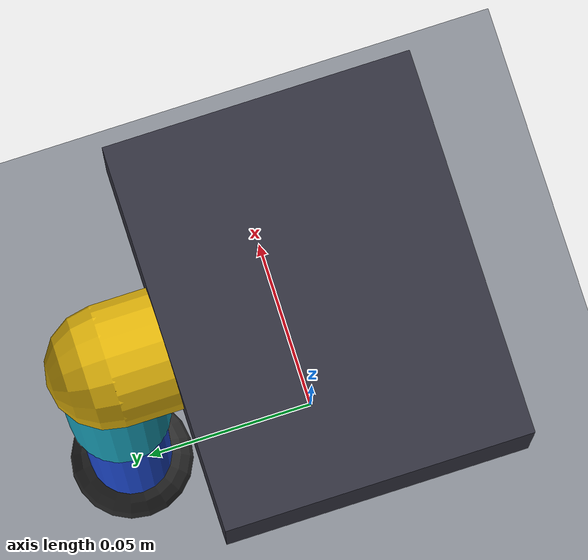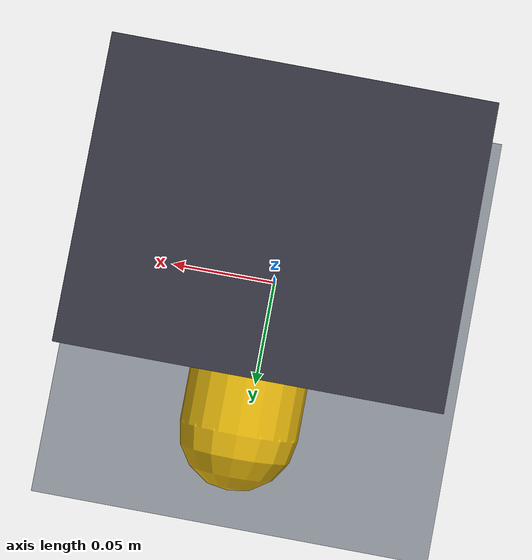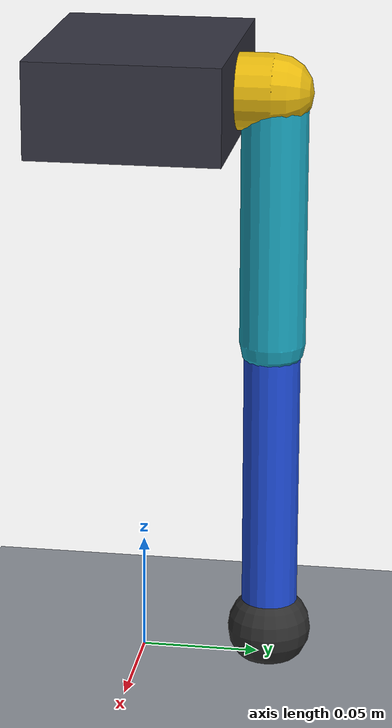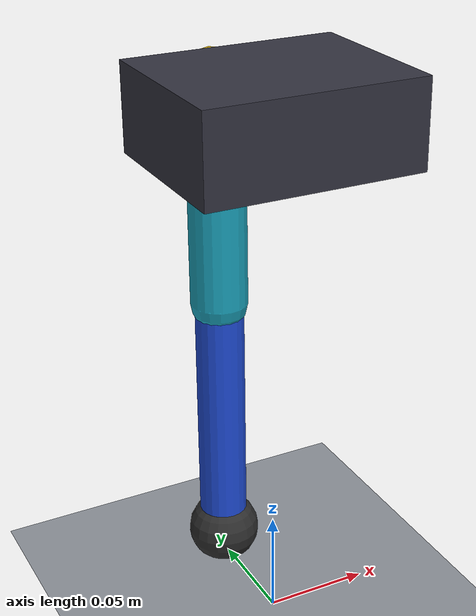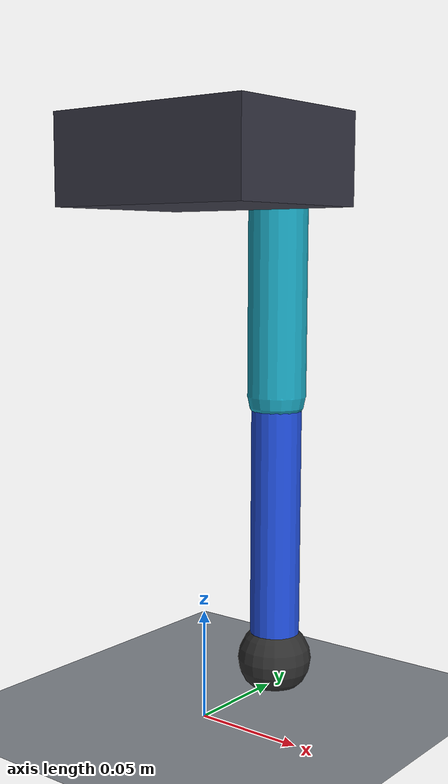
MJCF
<mujoco model="one_leg_testbench_front_left">
  <compiler angle="radian" autolimits="true"/>
  <option timestep="0.002" gravity="0 0 -9.81" integrator="implicitfast"/>

  <default>
    <joint damping="0.12" armature="0.002"/>
    <geom friction="1.0 0.02 0.002" condim="4"/>
  </default>

  <worldbody>
    <light pos="0 0 2" dir="0 0 -1"/>
    <geom name="floor" type="plane" size="1 1 0.1" rgba="0.55 0.57 0.6 1"/>

    <!-- Rigid mount standing in for the gantry; the script moves it to lower the leg or disturb it. -->
    <body name="mount" mocap="true" pos="0 0 0.25">
      <geom name="mount_geom" type="box" size="0.05 0.04 0.02" contype="0" conaffinity="0" rgba="0.2 0.2 0.25 1"/>

      <body name="front_left_shoulder_link">
        <joint name="front_left_shoulder" axis="1 0 0" range="-0.548 0.548"/>
        <geom type="capsule" fromto="0 0 0 0 0.055 0" size="0.016" mass="0.12" rgba="0.9 0.72 0.05 1"/>

        <body name="front_left_leg_link" pos="0 0.055 0">
          <joint name="front_left_leg" axis="0 1 0" range="-2.666 1.548"/>
          <geom type="capsule" fromto="0 0 0 0 0 -0.1075" size="0.014" mass="0.18" rgba="0.1 0.65 0.75 1"/>

          <body name="front_left_foot_link" pos="0 0 -0.1075">
            <joint name="front_left_foot" axis="0 1 0" range="-2.6 0.1"/>
            <geom type="capsule" fromto="0 0 0 0 0 -0.130" size="0.012" mass="0.16" rgba="0.12 0.3 0.85 1"/>
            <geom name="left_toe" type="sphere" pos="0 0 -0.130" size="0.018" mass="0.035" rgba="0.18 0.18 0.18 1"/>
            <site name="toe_site" pos="0 0 -0.130" size="0.006" rgba="1 0.15 0.15 1"/>
          </body>
        </body>
      </body>
    </body>
  </worldbody>

  <!-- Position servos approximate hobby-servo behavior; ctrl is the joint angle in radians. -->
  <actuator>
    <position name="front_left_shoulder_actuator" joint="front_left_shoulder" kp="45" kv="3.5" ctrlrange="-0.548 0.548" forcerange="-3.0 3.0"/>
    <position name="front_left_leg_actuator" joint="front_left_leg" kp="55" kv="4.0" ctrlrange="-2.666 1.548" forcerange="-4.0 4.0"/>
    <position name="front_left_foot_actuator" joint="front_left_foot" kp="45" kv="3.5" ctrlrange="-2.6 0.1" forcerange="-3.5 3.5"/>
  </actuator>
</mujoco>
